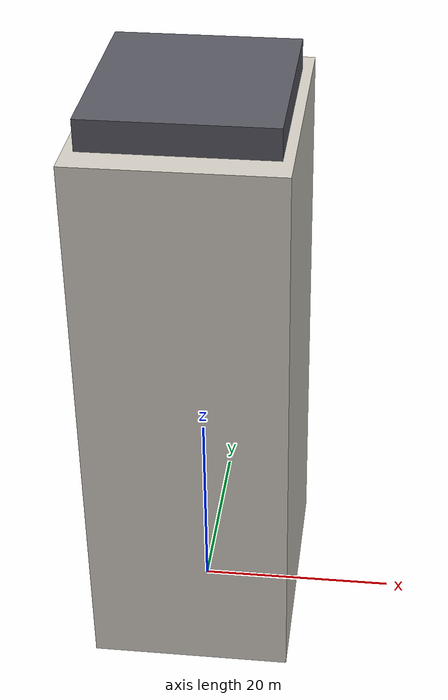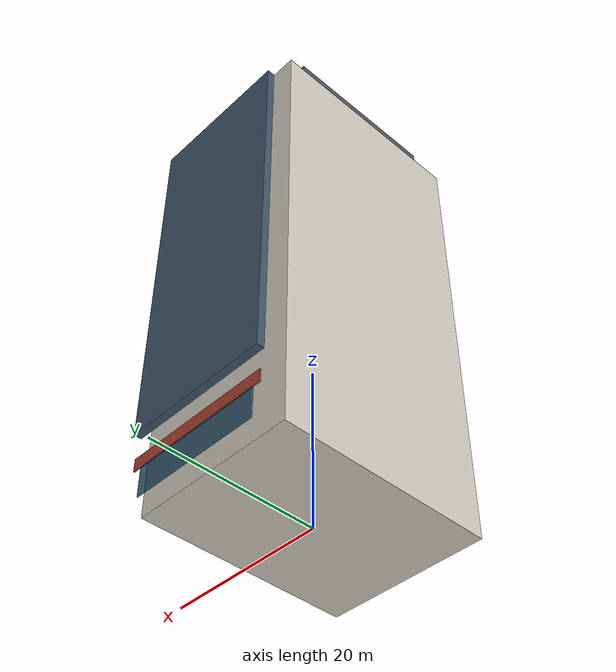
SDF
<?xml version="1.0" ?>
<sdf version="1.8">
  <model name="park_prime_residence">
    <static>true</static>
    <link name="park_prime_link">
      <collision name="tower_col"><pose>0 0 28.0 0 0 0</pose><geometry><box><size>20.0 26.0 56.0</size></box></geometry></collision>
      <visual name="tower_vis"><pose>0 0 28.0 0 0 0</pose><geometry><box><size>20.0 26.0 56.0</size></box></geometry><material><ambient>0.76 0.74 0.70 1</ambient><diffuse>0.82 0.80 0.76 1</diffuse></material></visual>
      <!-- 1F 面向日光公園景觀餐廳 -->
      <visual name="bistro_fascia"><pose>0 15.1 4.5 0 0 0</pose><geometry><box><size>18.0 0.15 1.5</size></box></geometry><material><ambient>0.50 0.20 0.15 1</ambient><diffuse>0.68 0.26 0.20 1</diffuse><emissive>0.25 0.08 0.05 1</emissive></material></visual>
      <visual name="bistro_glass"><pose>0 15.05 2.2 0 0 0</pose><geometry><box><size>16.0 0.1 3.8</size></box></geometry><material><ambient>0.15 0.25 0.35 0.88</ambient><diffuse>0.20 0.35 0.45 0.88</diffuse></material></visual>
      <visual name="parkview_balconies"><pose>0 15.2 30.0 0 0 0</pose><geometry><box><size>18.0 0.9 44.0</size></box></geometry><material><ambient>0.20 0.26 0.32 0.9</ambient><diffuse>0.26 0.34 0.42 0.9</diffuse><specular>0.9 0.95 1.0 1</specular></material></visual>
      <visual name="tower_crown"><pose>0 0 57.5 0 0 0</pose><geometry><box><size>18.0 20.0 3.0</size></box></geometry><material><ambient>0.28 0.28 0.32 1</ambient><diffuse>0.34 0.34 0.38 1</diffuse></material></visual>
    </link>
  </model>
</sdf>
